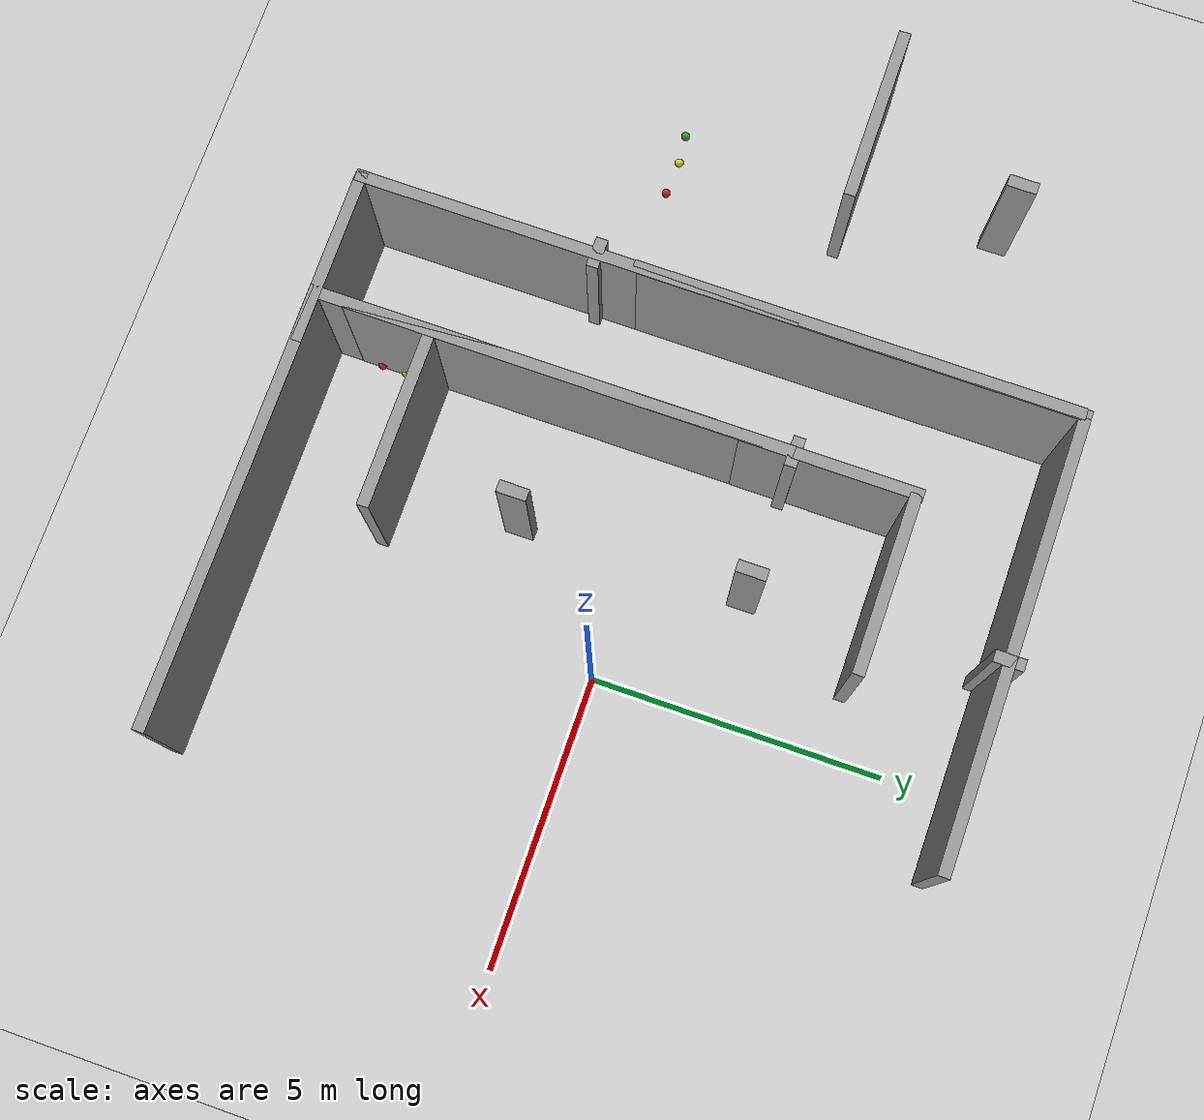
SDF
<sdf version="1.6">
 <world name="default">
  <model name="ground_plane">
   <static>1</static>
   <link name="link">
    <collision name="collision">
     <geometry><plane><normal>0 0 1</normal><size>100 100</size></plane></geometry>
     <surface>
      <contact><collide_bitmask>65535</collide_bitmask></contact>
      <friction><ode><mu>100</mu><mu2>50</mu2></ode></friction>
     </surface>
    </collision>
    <visual name="visual">
     <cast_shadows>0</cast_shadows>
     <geometry><plane><normal>0 0 1</normal><size>100 100</size></plane></geometry>
     <material>
      <script><uri>file://media/materials/scripts/gazebo.material</uri><name>Gazebo/Grey</name></script>
     </material>
    </visual>
   </link>
  </model>
  <model name="grey_wall_0">
   <static>1</static>
   <link name="link">
    <pose>0 0 1.4 0 -0 0</pose>
    <collision name="collision"><geometry><box><size>0.5 0.2 2.8</size></box></geometry></collision>
    <visual name="visual">
     <cast_shadows>0</cast_shadows>
     <geometry><box><size>0.5 0.2 2.8</size></box></geometry>
     <material>
      <script>
       <uri>model://grey_wall/materials/scripts</uri>
       <uri>model://grey_wall/materials/textures</uri>
       <name>vrc/grey_wall</name>
      </script>
     </material>
    </visual>
   </link>
   <pose>-9.43423 4.05192 0 0 -0 1.57</pose>
  </model>
  <model name="grey_wall_1_clone">
   <static>1</static>
   <link name="link">
    <pose>0 0 1.4 0 -0 0</pose>
    <collision name="collision"><geometry><box><size>7.5 0.2 2.8</size></box></geometry></collision>
    <visual name="visual">
     <cast_shadows>0</cast_shadows>
     <geometry><box><size>7.5 0.2 2.8</size></box></geometry>
     <material>
      <script>
       <uri>model://grey_wall/materials/scripts</uri>
       <uri>model://grey_wall/materials/textures</uri>
       <name>vrc/grey_wall</name>
      </script>
     </material>
    </visual>
   </link>
   <pose>-4.00257 -1.78972 0 0 -0 1.57</pose>
  </model>
  <model name="grey_wall_1_clone_clone">
   <static>1</static>
   <link name="link">
    <pose>0 0 1.4 0 -0 0</pose>
    <collision name="collision"><geometry><box><size>7.5 0.2 2.8</size></box></geometry></collision>
    <visual name="visual">
     <cast_shadows>0</cast_shadows>
     <geometry><box><size>7.5 0.2 2.8</size></box></geometry>
     <material>
      <script>
       <uri>model://grey_wall/materials/scripts</uri>
       <uri>model://grey_wall/materials/textures</uri>
       <name>vrc/grey_wall</name>
      </script>
     </material>
    </visual>
   </link>
   <pose>-4.00463 -2.27948 0 0 -0 1.57</pose>
  </model>
  <model name="grey_wall_clone_clone_clone">
   <static>1</static>
   <link name="link">
    <pose>0 0 1.4 0 -0 0</pose>
    <collision name="collision"><geometry><box><size>7.5 0.2 2.8</size></box></geometry></collision>
    <visual name="visual">
     <cast_shadows>0</cast_shadows>
     <geometry><box><size>7.5 0.2 2.8</size></box></geometry>
     <material>
      <script>
       <uri>model://grey_wall/materials/scripts</uri>
       <uri>model://grey_wall/materials/textures</uri>
       <name>vrc/grey_wall</name>
      </script>
     </material>
    </visual>
   </link>
   <pose>-0.358299 -6.03778 0 0 -0 0</pose>
  </model>
  <model name="grey_wall_0_clone_0">
   <static>1</static>
   <link name="link">
    <pose>0 0 1.4 0 -0 0</pose>
    <collision name="collision"><geometry><box><size>7.5 0.2 2.8</size></box></geometry></collision>
    <visual name="visual">
     <cast_shadows>0</cast_shadows>
     <geometry><box><size>7.5 0.2 2.8</size></box></geometry>
     <material>
      <script>
       <uri>model://grey_wall/materials/scripts</uri>
       <uri>model://grey_wall/materials/textures</uri>
       <name>vrc/grey_wall</name>
      </script>
     </material>
    </visual>
   </link>
   <pose>-2.27392 6.07905 0 0 -0 0</pose>
  </model>
  <model name="grey_wall_1_clone_clone_clone">
   <static>1</static>
   <link name="link">
    <pose>0 0 1.4 0 -0 0</pose>
    <collision name="collision"><geometry><box><size>7.5 0.2 2.8</size></box></geometry></collision>
    <visual name="visual">
     <cast_shadows>0</cast_shadows>
     <geometry><box><size>7.5 0.2 2.8</size></box></geometry>
     <material>
      <script>
       <uri>model://grey_wall/materials/scripts</uri>
       <uri>model://grey_wall/materials/textures</uri>
       <name>vrc/grey_wall</name>
      </script>
     </material>
    </visual>
   </link>
   <pose>-6.06651 2.42489 0 0 -0 1.57</pose>
  </model>
  <model name="grey_wall_1_clone_clone_clone_0">
   <static>1</static>
   <link name="link">
    <pose>0 0 1.4 0 -0 0</pose>
    <collision name="collision"><geometry><box><size>7.5 0.2 2.8</size></box></geometry></collision>
    <visual name="visual">
     <cast_shadows>0</cast_shadows>
     <geometry><box><size>7.5 0.2 2.8</size></box></geometry>
     <material>
      <script>
       <uri>model://grey_wall/materials/scripts</uri>
       <uri>model://grey_wall/materials/textures</uri>
       <name>vrc/grey_wall</name>
      </script>
     </material>
    </visual>
   </link>
   <pose>-6.07531 -2.38028 0 0 -0 1.57</pose>
  </model>
  <model name="grey_wall_1_clone_1_clone_0">
   <static>1</static>
   <link name="link">
    <pose>0 0 1.4 0 -0 0</pose>
    <collision name="collision"><geometry><box><size>7.5 0.2 2.8</size></box></geometry></collision>
    <visual name="visual">
     <cast_shadows>0</cast_shadows>
     <geometry><box><size>7.5 0.2 2.8</size></box></geometry>
     <material>
      <script>
       <uri>model://grey_wall/materials/scripts</uri>
       <uri>model://grey_wall/materials/textures</uri>
       <name>vrc/grey_wall</name>
      </script>
     </material>
    </visual>
   </link>
   <pose>-6.08287 2.33795 0 0 -0 1.57</pose>
  </model>
  <model name="grey_wall_0_clone_2">
   <static>1</static>
   <link name="link">
    <pose>0 0 1.4 0 -0 0</pose>
    <collision name="collision"><geometry><box><size>3 0.2 2.8</size></box></geometry></collision>
    <visual name="visual">
     <cast_shadows>0</cast_shadows>
     <geometry><box><size>3 0.2 2.8</size></box></geometry>
     <material>
      <script>
       <uri>model://grey_wall/materials/scripts</uri>
       <uri>model://grey_wall/materials/textures</uri>
       <name>vrc/grey_wall</name>
      </script>
     </material>
    </visual>
   </link>
   <pose>-2.49232 3.9612 0 0 -0 0</pose>
  </model>
  <model name="grey_wall_0_clone_3">
   <static>1</static>
   <link name="link">
    <pose>0 0 1.4 0 -0 0</pose>
    <collision name="collision"><geometry><box><size>3 0.2 2.8</size></box></geometry></collision>
    <visual name="visual">
     <cast_shadows>0</cast_shadows>
     <geometry><box><size>3 0.2 2.8</size></box></geometry>
     <material>
      <script>
       <uri>model://grey_wall/materials/scripts</uri>
       <uri>model://grey_wall/materials/textures</uri>
       <name>vrc/grey_wall</name>
      </script>
     </material>
    </visual>
   </link>
   <pose>-9.84414 1.47219 0 0 -0 0</pose>
  </model>
  <model name="grey_wall_0_clone_4">
   <static>1</static>
   <link name="link">
    <pose>0 0 1.4 0 -0 0</pose>
    <collision name="collision"><geometry><box><size>3 0.2 2.8</size></box></geometry></collision>
    <visual name="visual">
     <cast_shadows>0</cast_shadows>
     <geometry><box><size>3 0.2 2.8</size></box></geometry>
     <material>
      <script>
       <uri>model://grey_wall/materials/scripts</uri>
       <uri>model://grey_wall/materials/textures</uri>
       <name>vrc/grey_wall</name>
      </script>
     </material>
    </visual>
   </link>
   <pose>-3.99565 2.57281 0 0 -0 1.57</pose>
  </model>
  <model name="grey_wall_0_clone_3_clone">
   <static>1</static>
   <link name="link">
    <pose>0 0 1.4 0 -0 0</pose>
    <collision name="collision"><geometry><box><size>3 0.2 2.8</size></box></geometry></collision>
    <visual name="visual">
     <cast_shadows>0</cast_shadows>
     <geometry><box><size>3 0.2 2.8</size></box></geometry>
     <material>
      <script>
       <uri>model://grey_wall/materials/scripts</uri>
       <uri>model://grey_wall/materials/textures</uri>
       <name>vrc/grey_wall</name>
      </script>
     </material>
    </visual>
   </link>
   <pose>-4.64625 -6.04063 0 0 -0 0</pose>
  </model>
  <model name="grey_wall_0_clone_3_clone_1">
   <static>1</static>
   <link name="link">
    <pose>0 0 1.4 0 -0 0</pose>
    <collision name="collision"><geometry><box><size>3 0.2 2.8</size></box></geometry></collision>
    <visual name="visual">
     <cast_shadows>0</cast_shadows>
     <geometry><box><size>3 0.2 2.8</size></box></geometry>
     <material>
      <script>
       <uri>model://grey_wall/materials/scripts</uri>
       <uri>model://grey_wall/materials/textures</uri>
       <name>vrc/grey_wall</name>
      </script>
     </material>
    </visual>
   </link>
   <pose>-2.48398 -4.08182 0 0 -0 0</pose>
  </model>
  <model name="grey_wall_0_clone_6">
   <static>1</static>
   <link name="link">
    <pose>0 0 1.4 0 -0 0</pose>
    <collision name="collision"><geometry><box><size>0.5 0.2 2.8</size></box></geometry></collision>
    <visual name="visual">
     <cast_shadows>0</cast_shadows>
     <geometry><box><size>0.5 0.2 2.8</size></box></geometry>
     <material>
      <script>
       <uri>model://grey_wall/materials/scripts</uri>
       <uri>model://grey_wall/materials/textures</uri>
       <name>vrc/grey_wall</name>
      </script>
     </material>
    </visual>
   </link>
   <pose>-2.00676 1.93546 0 0 -0 1.57</pose>
  </model>
  <model name="grey_wall_0_clone_8">
   <static>1</static>
   <link name="link">
    <pose>0 0 1.4 0 -0 0</pose>
    <collision name="collision"><geometry><box><size>0.5 0.2 2.8</size></box></geometry></collision>
    <visual name="visual">
     <cast_shadows>0</cast_shadows>
     <geometry><box><size>0.5 0.2 2.8</size></box></geometry>
     <material>
      <script>
       <uri>model://grey_wall/materials/scripts</uri>
       <uri>model://grey_wall/materials/textures</uri>
       <name>vrc/grey_wall</name>
      </script>
     </material>
    </visual>
   </link>
   <pose>-1.98302 -1.96899 0 0 -0 1.57</pose>
  </model>
  <model name="grey_wall_0_clone_11">
   <static>1</static>
   <link name="link">
    <pose>0 0 1.4 0 -0 0</pose>
    <collision name="collision"><geometry><box><size>0.5 0.2 2.8</size></box></geometry></collision>
    <visual name="visual">
     <cast_shadows>0</cast_shadows>
     <geometry><box><size>0.5 0.2 2.8</size></box></geometry>
     <material>
      <script>
       <uri>model://grey_wall/materials/scripts</uri>
       <uri>model://grey_wall/materials/textures</uri>
       <name>vrc/grey_wall</name>
      </script>
     </material>
    </visual>
   </link>
   <pose>-6.08973 -2.02435 0 0 0 -0.004824</pose>
  </model>
  <model name="grey_wall_0_clone_11_clone">
   <static>1</static>
   <link name="link">
    <pose>0 0 1.4 0 -0 0</pose>
    <collision name="collision"><geometry><box><size>0.5 0.2 2.8</size></box></geometry></collision>
    <visual name="visual">
     <cast_shadows>0</cast_shadows>
     <geometry><box><size>0.5 0.2 2.8</size></box></geometry>
     <material>
      <script>
       <uri>model://grey_wall/materials/scripts</uri>
       <uri>model://grey_wall/materials/textures</uri>
       <name>vrc/grey_wall</name>
      </script>
     </material>
    </visual>
   </link>
   <pose>-4.00987 1.96788 0 0 0 -0.004824</pose>
  </model>
  <model name="grey_wall_0_clone_12">
   <static>1</static>
   <link name="link">
    <pose>0 0 1.4 0 -0 0</pose>
    <collision name="collision"><geometry><box><size>0.5 0.2 2.8</size></box></geometry></collision>
    <visual name="visual">
     <cast_shadows>0</cast_shadows>
     <geometry><box><size>0.5 0.2 2.8</size></box></geometry>
     <material>
      <script>
       <uri>model://grey_wall/materials/scripts</uri>
       <uri>model://grey_wall/materials/textures</uri>
       <name>vrc/grey_wall</name>
      </script>
     </material>
    </visual>
   </link>
   <pose>-1.96237 6.07256 0 0 -0 1.57</pose>
  </model>
  <model name="traffic_light_green_clone">
   <pose>-1.16934 -2.89385 0.187993 0 0 -1.5708</pose>
   <link name="traffic_light_green">
    <collision name="collision">
     <pose>1.3 -1.95 0.05 0 -0 0</pose>
     <geometry><sphere><radius>0.075</radius></sphere></geometry>
    </collision>
    <visual name="visual">
     <pose>1.3 -1.95 0.05 0 -0 0</pose>
     <geometry><sphere><radius>0.075</radius></sphere></geometry>
     <material>
      <script><name>Gazebo/Green</name><uri>file://media/materials/scripts/gazebo.material</uri></script>
     </material>
    </visual>
   </link>
   <static>1</static>
  </model>
  <model name="traffic_light_red_clone">
   <pose>-1.95466 -3.86494 0 0 0 -1.5708</pose>
   <link name="traffic_light_red">
    <collision name="collision">
     <pose>1.3 -1.95 0.13 0 -0 0</pose>
     <geometry><sphere><radius>0.075</radius></sphere></geometry>
    </collision>
    <visual name="visual">
     <pose>1.3 -1.95 0.13 0 -0 0</pose>
     <geometry><sphere><radius>0.075</radius></sphere></geometry>
     <material>
      <script><name>Gazebo/Red</name><uri>file://media/materials/scripts/gazebo.material</uri></script>
     </material>
    </visual>
   </link>
   <static>1</static>
  </model>
  <model name="traffic_light_green_clone_clone">
   <pose>-0.307811 -2.90977 0.187993 0 0 -1.5708</pose>
   <link name="traffic_light_green">
    <collision name="collision">
     <pose>1.3 -1.95 0.05 0 -0 0</pose>
     <geometry><sphere><radius>0.075</radius></sphere></geometry>
    </collision>
    <visual name="visual">
     <pose>1.3 -1.95 0.05 0 -0 0</pose>
     <geometry><sphere><radius>0.075</radius></sphere></geometry>
     <material>
      <script><name>Gazebo/Green</name><uri>file://media/materials/scripts/gazebo.material</uri></script>
     </material>
    </visual>
   </link>
   <static>1</static>
  </model>
  <model name="traffic_light_yellow_clone">
   <pose>-1.96829 -3.45173 0 0 0 -1.5708</pose>
   <link name="traffic_light_yellow">
    <collision name="collision">
     <pose>1.3 -1.95 0.09 0 -0 0</pose>
     <geometry><sphere><radius>0.075</radius></sphere></geometry>
    </collision>
    <visual name="visual">
     <pose>1.3 -1.95 0.09 0 -0 0</pose>
     <geometry><sphere><radius>0.075</radius></sphere></geometry>
     <material>
      <script><name>Gazebo/Yellow</name><uri>file://media/materials/scripts/gazebo.material</uri></script>
     </material>
    </visual>
   </link>
   <static>1</static>
  </model>
  <model name="traffic_light_green_clone_clone_0">
   <pose>-7.57978 -0.320696 0.187993 0 0 -1.5708</pose>
   <link name="traffic_light_green">
    <collision name="collision">
     <pose>1.3 -1.95 0.05 0 -0 0</pose>
     <geometry><sphere><radius>0.075</radius></sphere></geometry>
    </collision>
    <visual name="visual">
     <pose>1.3 -1.95 0.05 0 -0 0</pose>
     <geometry><sphere><radius>0.075</radius></sphere></geometry>
     <material>
      <script><name>Gazebo/Green</name><uri>file://media/materials/scripts/gazebo.material</uri></script>
     </material>
    </visual>
   </link>
   <static>1</static>
  </model>
  <model name="traffic_light_yellow_clone_clone">
   <pose>-7.1347 -0.284083 0 0 0 -1.5708</pose>
   <link name="traffic_light_yellow">
    <collision name="collision">
     <pose>1.3 -1.95 0.09 0 -0 0</pose>
     <geometry><sphere><radius>0.075</radius></sphere></geometry>
    </collision>
    <visual name="visual">
     <pose>1.3 -1.95 0.09 0 -0 0</pose>
     <geometry><sphere><radius>0.075</radius></sphere></geometry>
     <material>
      <script><name>Gazebo/Yellow</name><uri>file://media/materials/scripts/gazebo.material</uri></script>
     </material>
    </visual>
   </link>
   <static>1</static>
  </model>
  <model name="traffic_light_red_clone_clone_0">
   <pose>-6.50821 -0.310987 0 0 0 -1.5708</pose>
   <link name="traffic_light_red">
    <collision name="collision">
     <pose>1.3 -1.95 0.13 0 -0 0</pose>
     <geometry><sphere><radius>0.075</radius></sphere></geometry>
    </collision>
    <visual name="visual">
     <pose>1.3 -1.95 0.13 0 -0 0</pose>
     <geometry><sphere><radius>0.075</radius></sphere></geometry>
     <material>
      <script><name>Gazebo/Red</name><uri>file://media/materials/scripts/gazebo.material</uri></script>
     </material>
    </visual>
   </link>
   <static>1</static>
  </model>
 </world>
</sdf>
